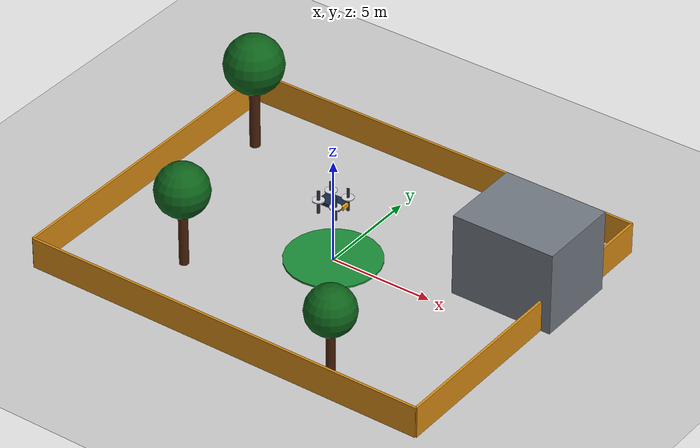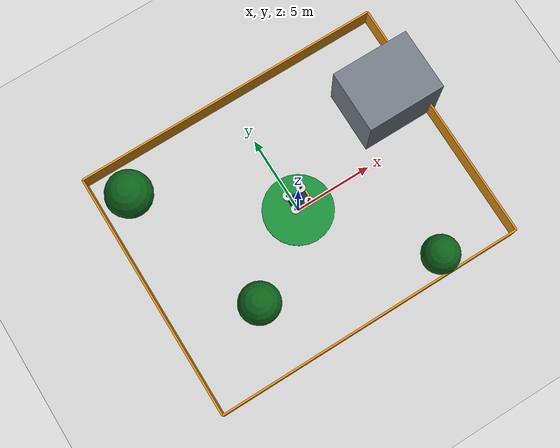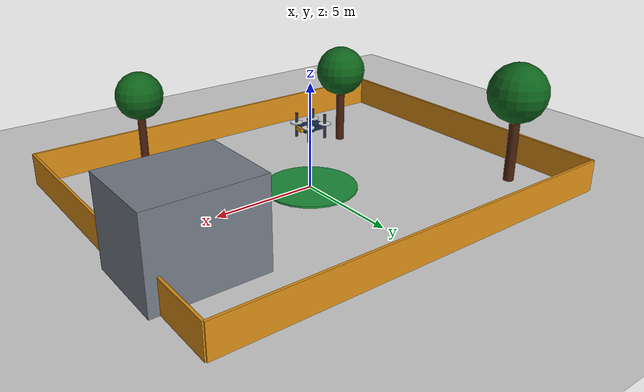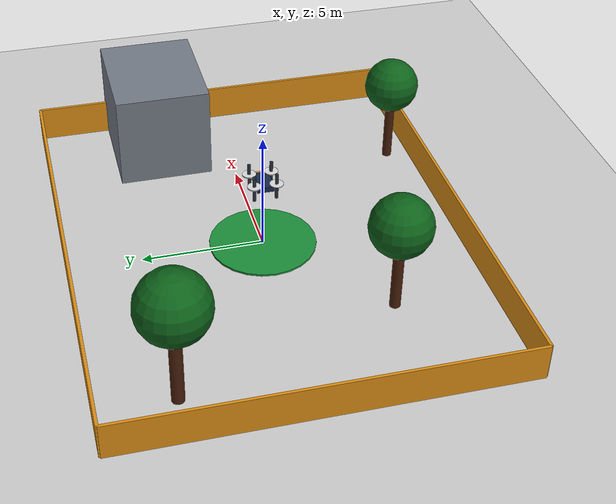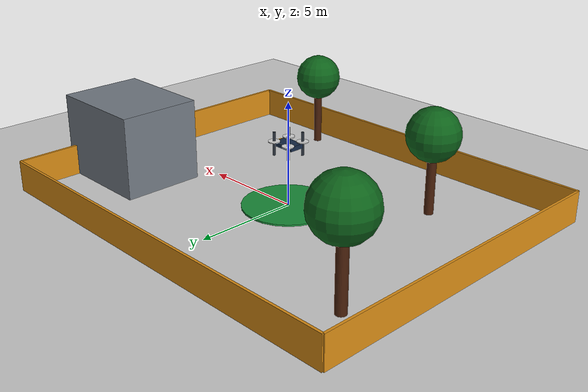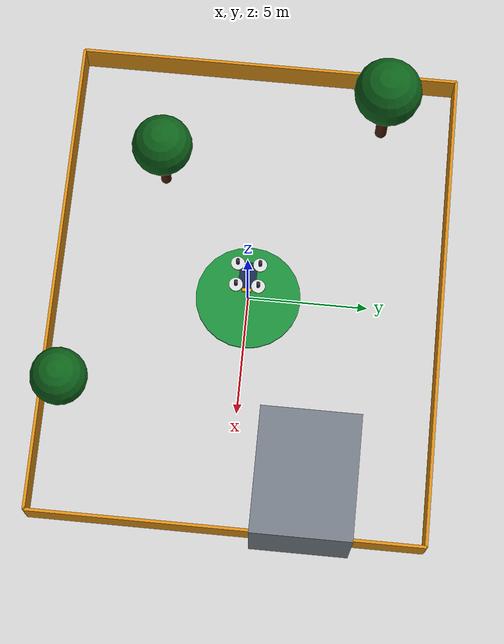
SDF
<?xml version="1.0" ?>
<sdf version="1.6">
  <world name="drone_lab">
    <include>
      <uri>model://sun</uri>
    </include>
    <include>
      <uri>model://ground_plane</uri>
    </include>
    <scene>
      <ambient>0.5 0.5 0.5 1</ambient>
      <background>0.65 0.72 0.78 1</background>
      <shadows>false</shadows>
    </scene>
    <gui fullscreen="false">
      <camera name="user_camera">
        <pose>14 -14 9 0 0.45 2.35</pose>
        <view_controller>orbit</view_controller>
      </camera>
    </gui>

    <!-- Visible and collidable boundary of the flight area: 20 x 16 m. -->
    <model name="boundary_north"><static>true</static><pose>0 8 0.75 0 0 0</pose><link name="wall"><collision name="collision"><geometry><box><size>20 0.12 1.5</size></box></geometry></collision><visual name="visual"><geometry><box><size>20 0.12 1.5</size></box></geometry><material><diffuse>0.85 0.55 0.08 1</diffuse></material></visual></link></model>
    <model name="boundary_south"><static>true</static><pose>0 -8 0.75 0 0 0</pose><link name="wall"><collision name="collision"><geometry><box><size>20 0.12 1.5</size></box></geometry></collision><visual name="visual"><geometry><box><size>20 0.12 1.5</size></box></geometry><material><diffuse>0.85 0.55 0.08 1</diffuse></material></visual></link></model>
    <model name="boundary_east"><static>true</static><pose>10 0 0.75 0 0 0</pose><link name="wall"><collision name="collision"><geometry><box><size>0.12 16 1.5</size></box></geometry></collision><visual name="visual"><geometry><box><size>0.12 16 1.5</size></box></geometry><material><diffuse>0.85 0.55 0.08 1</diffuse></material></visual></link></model>
    <model name="boundary_west"><static>true</static><pose>-10 0 0.75 0 0 0</pose><link name="wall"><collision name="collision"><geometry><box><size>0.12 16 1.5</size></box></geometry></collision><visual name="visual"><geometry><box><size>0.12 16 1.5</size></box></geometry><material><diffuse>0.85 0.55 0.08 1</diffuse></material></visual></link></model>

    <model name="landing_pad">
      <static>true</static>
      <pose>0 0 0.03 0 0 0</pose>
      <link name="pad">
        <collision name="collision"><geometry><cylinder><radius>2.2</radius><length>0.08</length></cylinder></geometry></collision>
        <visual name="visual"><geometry><cylinder><radius>2.2</radius><length>0.08</length></cylinder></geometry><material><ambient>0.08 0.35 0.16 1</ambient><diffuse>0.10 0.55 0.22 1</diffuse></material></visual>
      </link>
    </model>

    <model name="warehouse">
      <static>true</static>
      <pose>8 3 2 0 0 0</pose>
      <link name="building">
        <collision name="collision"><geometry><box><size>5 4 4</size></box></geometry></collision>
        <visual name="visual"><geometry><box><size>5 4 4</size></box></geometry><material><ambient>0.30 0.32 0.36 1</ambient><diffuse>0.45 0.48 0.52 1</diffuse></material></visual>
      </link>
    </model>

    <model name="tree_1"><static>true</static><pose>-5 -4 1.5 0 0 0</pose><link name="trunk"><visual name="trunk"><geometry><cylinder><radius>0.22</radius><length>3</length></cylinder></geometry><material><diffuse>0.28 0.12 0.04 1</diffuse></material></visual><visual name="crown"><pose>0 0 2.3 0 0 0</pose><geometry><sphere><radius>1.25</radius></sphere></geometry><material><diffuse>0.05 0.38 0.10 1</diffuse></material></visual></link></model>
    <model name="tree_2"><static>true</static><pose>-8 5 1.7 0 0 0</pose><link name="trunk"><visual name="trunk"><geometry><cylinder><radius>0.25</radius><length>3.4</length></cylinder></geometry><material><diffuse>0.28 0.12 0.04 1</diffuse></material></visual><visual name="crown"><pose>0 0 2.6 0 0 0</pose><geometry><sphere><radius>1.4</radius></sphere></geometry><material><diffuse>0.05 0.38 0.10 1</diffuse></material></visual></link></model>
    <model name="tree_3"><static>true</static><pose>5 -7 1.4 0 0 0</pose><link name="trunk"><visual name="trunk"><geometry><cylinder><radius>0.2</radius><length>2.8</length></cylinder></geometry><material><diffuse>0.28 0.12 0.04 1</diffuse></material></visual><visual name="crown"><pose>0 0 2.2 0 0 0</pose><geometry><sphere><radius>1.15</radius></sphere></geometry><material><diffuse>0.05 0.38 0.10 1</diffuse></material></visual></link></model>

    <model name="drone">
      <pose>0 0 3.0 0 0 0</pose>
      <link name="base">
        <gravity>false</gravity>
        <inertial><mass>1.5</mass><inertia><ixx>0.02</ixx><iyy>0.02</iyy><izz>0.03</izz><ixy>0</ixy><ixz>0</ixz><iyz>0</iyz></inertia></inertial>
        <collision name="collision"><geometry><box><size>1.1 0.7 0.22</size></box></geometry></collision>
        <visual name="body"><geometry><box><size>1.1 0.7 0.22</size></box></geometry><material><ambient>0.05 0.08 0.12 1</ambient><diffuse>0.08 0.16 0.28 1</diffuse></material></visual>
        <visual name="nose"><pose>0.58 0 0 0 0 0</pose><geometry><box><size>0.18 0.38 0.18</size></box></geometry><material><diffuse>0.95 0.65 0.05 1</diffuse></material></visual>
        <visual name="arm_fl"><pose>0.45 0.45 0.05 0 0 0</pose><geometry><cylinder><radius>0.07</radius><length>1.1</length></cylinder></geometry><material><diffuse>0.15 0.18 0.22 1</diffuse></material></visual>
        <visual name="arm_fr"><pose>0.45 -0.45 0.05 0 0 0</pose><geometry><cylinder><radius>0.07</radius><length>1.1</length></cylinder></geometry><material><diffuse>0.15 0.18 0.22 1</diffuse></material></visual>
        <visual name="arm_rl"><pose>-0.45 0.45 0.05 0 0 0</pose><geometry><cylinder><radius>0.07</radius><length>1.1</length></cylinder></geometry><material><diffuse>0.15 0.18 0.22 1</diffuse></material></visual>
        <visual name="arm_rr"><pose>-0.45 -0.45 0.05 0 0 0</pose><geometry><cylinder><radius>0.07</radius><length>1.1</length></cylinder></geometry><material><diffuse>0.15 0.18 0.22 1</diffuse></material></visual>
        <visual name="rotor_fl"><pose>0.45 0.45 0.16 0 0 0</pose><geometry><cylinder><radius>0.28</radius><length>0.04</length></cylinder></geometry><material><diffuse>0.85 0.85 0.85 1</diffuse></material></visual>
        <visual name="rotor_fr"><pose>0.45 -0.45 0.16 0 0 0</pose><geometry><cylinder><radius>0.28</radius><length>0.04</length></cylinder></geometry><material><diffuse>0.85 0.85 0.85 1</diffuse></material></visual>
        <visual name="rotor_rl"><pose>-0.45 0.45 0.16 0 0 0</pose><geometry><cylinder><radius>0.28</radius><length>0.04</length></cylinder></geometry><material><diffuse>0.85 0.85 0.85 1</diffuse></material></visual>
        <visual name="rotor_rr"><pose>-0.45 -0.45 0.16 0 0 0</pose><geometry><cylinder><radius>0.28</radius><length>0.04</length></cylinder></geometry><material><diffuse>0.85 0.85 0.85 1</diffuse></material></visual>
      </link>
      <plugin name="force_control" filename="libgazebo_ros_force.so"><ros><namespace>/drone</namespace></ros><link_name>base</link_name><force_frame>world</force_frame></plugin>
      <plugin name="ground_truth" filename="libgazebo_ros_p3d.so"><ros><namespace>/drone</namespace><remapping>odom:=odom</remapping></ros><body_name>base</body_name><frame_name>world</frame_name><update_rate>30</update_rate><gaussian_noise>0</gaussian_noise></plugin>
    </model>
  </world>
</sdf>
